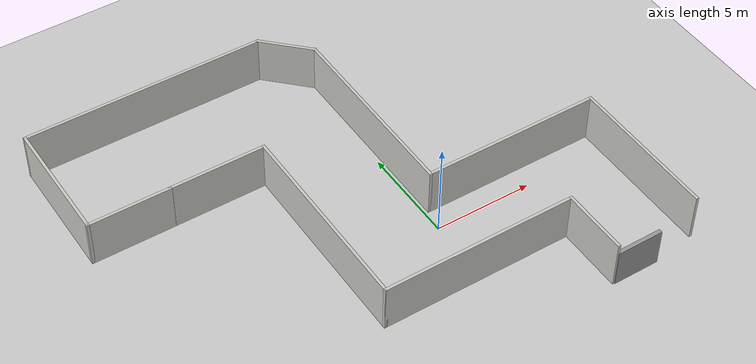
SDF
<sdf version="1.7">
 <world name="default">
  <light name="sun" type="directional">
   <pose>0 0 10 0 -0 0</pose>
   <diffuse>0.8 0.8 0.8 1</diffuse>
   <specular>0.2 0.2 0.2 1</specular>
   <attenuation>
    <range>1000</range>
    <constant>0.9</constant>
    <linear>0.01</linear>
    <quadratic>0.001</quadratic>
   </attenuation>
   <direction>-0.5 0.1 -0.9</direction>
   <spot><inner_angle>0</inner_angle><outer_angle>0</outer_angle><falloff>0</falloff></spot>
  </light>
  <model name="ground_plane">
   <static>1</static>
   <link name="link">
    <collision name="collision">
     <geometry><plane><normal>0 0 1</normal><size>100 100</size></plane></geometry>
     <surface>
      <contact><collide_bitmask>65535</collide_bitmask></contact>
      <friction><ode><mu>100</mu><mu2>50</mu2></ode></friction>
     </surface>
    </collision>
    <visual name="visual">
     <cast_shadows>0</cast_shadows>
     <geometry><plane><normal>0 0 1</normal><size>100 100</size></plane></geometry>
     <material>
      <script><uri>file://media/materials/scripts/gazebo.material</uri><name>Gazebo/Grey</name></script>
     </material>
    </visual>
   </link>
  </model>
  <gravity>0 0 -9.8</gravity>
  <magnetic_field>6e-06 2.3e-05 -4.2e-05</magnetic_field>
  <atmosphere type="adiabatic"/>
  <physics type="ode">
   <max_step_size>0.001</max_step_size>
   <real_time_factor>1</real_time_factor>
   <real_time_update_rate>1000</real_time_update_rate>
  </physics>
  <scene><ambient>0.4 0.4 0.4 1</ambient><background>0.7 0.7 0.7 1</background><shadows>1</shadows></scene>
  <spherical_coordinates>
   <surface_model>EARTH_WGS84</surface_model>
   <latitude_deg>0</latitude_deg>
   <longitude_deg>0</longitude_deg>
   <elevation>0</elevation>
   <heading_deg>0</heading_deg>
  </spherical_coordinates>
  <model name="Untitledddddd">
   <pose>-2.37737 3.13553 0 0 -0 0</pose>
   <link name="Door_0">
    <collision name="Door_0_Collision">
     <geometry><box><size>2.39892 0.2 2</size></box></geometry>
     <pose>0 0 1 0 -0 0</pose>
    </collision>
    <visual name="Door_0_Visual">
     <pose>0 0 1 0 -0 0</pose>
     <geometry><box><size>2.39892 0.2 2</size></box></geometry>
     <material>
      <script><uri>file://media/materials/scripts/gazebo.material</uri><name>Gazebo/Grey</name></script>
     </material>
    </visual>
    <pose>8.28369 -9.93117 0 0 -0 0</pose>
   </link>
   <link name="Wall_0">
    <collision name="Wall_0_Collision">
     <geometry><box><size>10 0.15 2.5</size></box></geometry>
     <pose>0 0 1.25 0 -0 0</pose>
    </collision>
    <visual name="Wall_0_Visual">
     <pose>0 0 1.25 0 -0 0</pose>
     <geometry><box><size>10 0.15 2.5</size></box></geometry>
     <material>
      <script><uri>file://media/materials/scripts/gazebo.material</uri><name>Gazebo/CeilingTiled</name></script>
      <ambient>1 1 1 1</ambient>
     </material>
     <meta><layer>0</layer></meta>
    </visual>
    <pose>2.14237 -6.56553 0 0 -0 0</pose>
   </link>
   <link name="Wall_10">
    <collision name="Wall_10_Collision">
     <geometry><box><size>9.25 0.15 2.5</size></box></geometry>
     <pose>0 0 1.25 0 -0 0</pose>
    </collision>
    <visual name="Wall_10_Visual">
     <pose>0 0 1.25 0 -0 0</pose>
     <geometry><box><size>9.25 0.15 2.5</size></box></geometry>
     <material>
      <script><uri>file://media/materials/scripts/gazebo.material</uri><name>Gazebo/CeilingTiled</name></script>
      <ambient>1 1 1 1</ambient>
     </material>
     <meta><layer>0</layer></meta>
    </visual>
    <pose>7.18263 -1.98079 0 0 -0 0</pose>
   </link>
   <link name="Wall_11">
    <collision name="Wall_11_Collision">
     <geometry><box><size>7.75 0.15 2.5</size></box></geometry>
     <pose>0 0 1.25 0 -0 0</pose>
    </collision>
    <visual name="Wall_11_Visual">
     <pose>0 0 1.25 0 -0 0</pose>
     <geometry><box><size>7.75 0.15 2.5</size></box></geometry>
     <material>
      <script><uri>file://media/materials/scripts/gazebo.material</uri><name>Gazebo/CeilingTiled</name></script>
      <ambient>1 1 1 1</ambient>
     </material>
     <meta><layer>0</layer></meta>
    </visual>
    <pose>11.7326 -5.78079 0 0 -0 -1.5708</pose>
   </link>
   <link name="Wall_13">
    <collision name="Wall_13_Collision">
     <geometry><box><size>3.5 0.15 2.5</size></box></geometry>
     <pose>0 0 1.25 0 -0 0</pose>
    </collision>
    <visual name="Wall_13_Visual">
     <pose>0 0 1.25 0 -0 0</pose>
     <geometry><box><size>3.5 0.15 2.5</size></box></geometry>
     <material>
      <script><uri>file://media/materials/scripts/gazebo.material</uri><name>Gazebo/CeilingTiled</name></script>
      <ambient>1 1 1 1</ambient>
     </material>
     <meta><layer>0</layer></meta>
    </visual>
    <pose>7.06737 -8.24053 0 0 -0 -1.5708</pose>
   </link>
   <link name="Wall_3">
    <collision name="Wall_3_Collision">
     <geometry><box><size>10.25 0.15 2.5</size></box></geometry>
     <pose>0 0 1.25 0 -0 0</pose>
    </collision>
    <visual name="Wall_3_Visual">
     <pose>0 0 1.25 0 -0 0</pose>
     <geometry><box><size>10.25 0.15 2.5</size></box></geometry>
     <material>
      <script><uri>file://media/materials/scripts/gazebo.material</uri><name>Gazebo/CeilingTiled</name></script>
      <ambient>1 1 1 1</ambient>
     </material>
     <meta><layer>0</layer></meta>
    </visual>
    <pose>-2.78263 -1.51553 0 0 -0 1.5708</pose>
   </link>
   <link name="Wall_4">
    <collision name="Wall_4_Collision">
     <geometry><box><size>5 0.15 2.5</size></box></geometry>
     <pose>0 0 1.25 0 -0 0</pose>
    </collision>
    <visual name="Wall_4_Visual">
     <pose>0 0 1.25 0 -0 0</pose>
     <geometry><box><size>5 0.15 2.5</size></box></geometry>
     <material>
      <script><uri>file://media/materials/scripts/gazebo.material</uri><name>Gazebo/CeilingTiled</name></script>
      <ambient>1 1 1 1</ambient>
     </material>
     <meta><layer>0</layer></meta>
    </visual>
    <pose>-5.20763 3.53447 0 0 -0 3.14159</pose>
   </link>
   <link name="Wall_5">
    <collision name="Wall_5_Collision">
     <geometry><box><size>4.25 0.15 2.5</size></box></geometry>
     <pose>0 0 1.25 0 -0 0</pose>
    </collision>
    <visual name="Wall_5_Visual">
     <pose>0 0 1.25 0 -0 0</pose>
     <geometry><box><size>4.25 0.15 2.5</size></box></geometry>
     <material>
      <script><uri>file://media/materials/scripts/gazebo.material</uri><name>Gazebo/CeilingTiled</name></script>
      <ambient>1 1 1 1</ambient>
     </material>
     <meta><layer>0</layer></meta>
    </visual>
    <pose>-9.68263 3.53447 0 0 -0 3.14159</pose>
   </link>
   <link name="Wall_6">
    <collision name="Wall_6_Collision">
     <geometry><box><size>6.5 0.15 2.5</size></box></geometry>
     <pose>0 0 1.25 0 -0 0</pose>
    </collision>
    <visual name="Wall_6_Visual">
     <pose>0 0 1.25 0 -0 0</pose>
     <geometry><box><size>6.5 0.15 2.5</size></box></geometry>
     <material>
      <script><uri>file://media/materials/scripts/gazebo.material</uri><name>Gazebo/CeilingTiled</name></script>
      <ambient>1 1 1 1</ambient>
     </material>
     <meta><layer>0</layer></meta>
    </visual>
    <pose>-11.7326 6.70947 0 0 -0 1.5708</pose>
   </link>
   <link name="Wall_7">
    <collision name="Wall_7_Collision">
     <geometry><box><size>12.5 0.15 2.5</size></box></geometry>
     <pose>0 0 1.25 0 -0 0</pose>
    </collision>
    <visual name="Wall_7_Visual">
     <pose>0 0 1.25 0 -0 0</pose>
     <geometry><box><size>12.5 0.15 2.5</size></box></geometry>
     <material>
      <script><uri>file://media/materials/scripts/gazebo.material</uri><name>Gazebo/CeilingTiled</name></script>
      <ambient>1 1 1 1</ambient>
     </material>
     <meta><layer>0</layer></meta>
    </visual>
    <pose>-5.55763 9.88447 0 0 -0 0</pose>
   </link>
   <link name="Wall_8">
    <collision name="Wall_8_Collision">
     <geometry><box><size>3 0.15 2.5</size></box></geometry>
     <pose>0 0 1.25 0 -0 0</pose>
    </collision>
    <visual name="Wall_8_Visual">
     <pose>0 0 1.25 0 -0 0</pose>
     <geometry><box><size>3 0.15 2.5</size></box></geometry>
     <material>
      <script><uri>file://media/materials/scripts/gazebo.material</uri><name>Gazebo/CeilingTiled</name></script>
      <ambient>1 1 1 1</ambient>
     </material>
     <meta><layer>0</layer></meta>
    </visual>
    <pose>1.625 8.87684 0 0 -0 -0.785398</pose>
   </link>
   <link name="Wall_9">
    <collision name="Wall_9_Collision">
     <geometry><box><size>10 0.15 2.5</size></box></geometry>
     <pose>0 0 1.25 0 -0 0</pose>
    </collision>
    <visual name="Wall_9_Visual">
     <pose>0 0 1.25 0 -0 0</pose>
     <geometry><box><size>10 0.15 2.5</size></box></geometry>
     <material>
      <script><uri>file://media/materials/scripts/gazebo.material</uri><name>Gazebo/CeilingTiled</name></script>
      <ambient>1 1 1 1</ambient>
     </material>
     <meta><layer>0</layer></meta>
    </visual>
    <pose>2.63263 2.94421 0 0 -0 -1.5708</pose>
   </link>
   <static>1</static>
  </model>
 </world>
</sdf>
